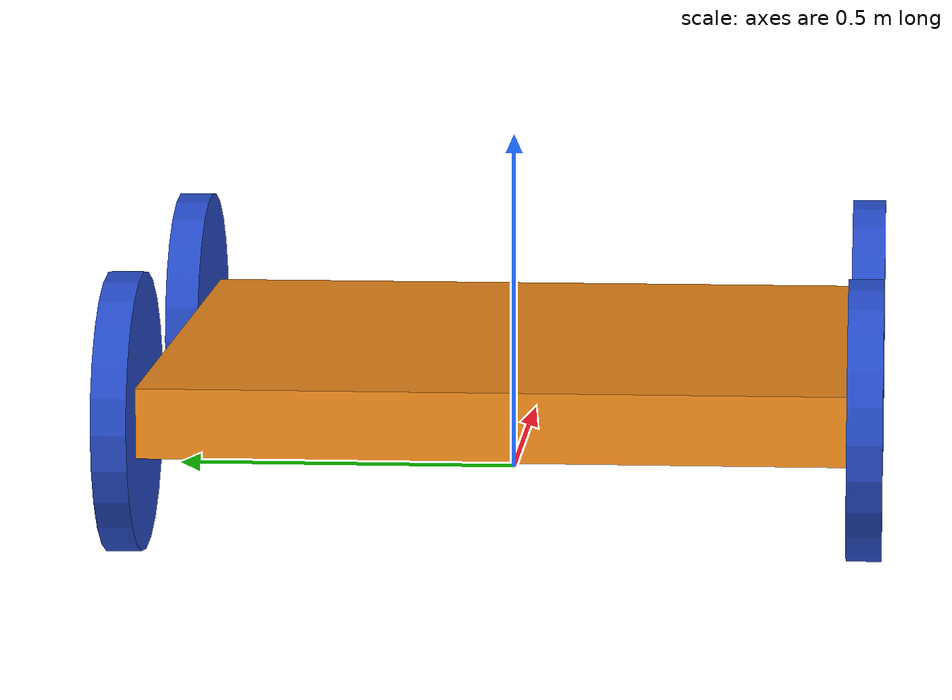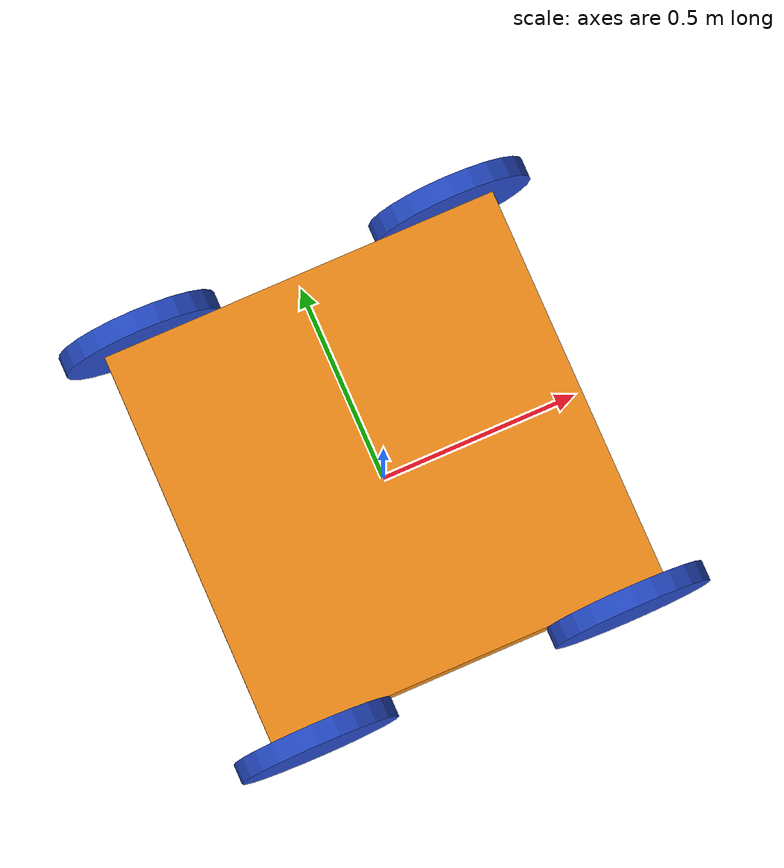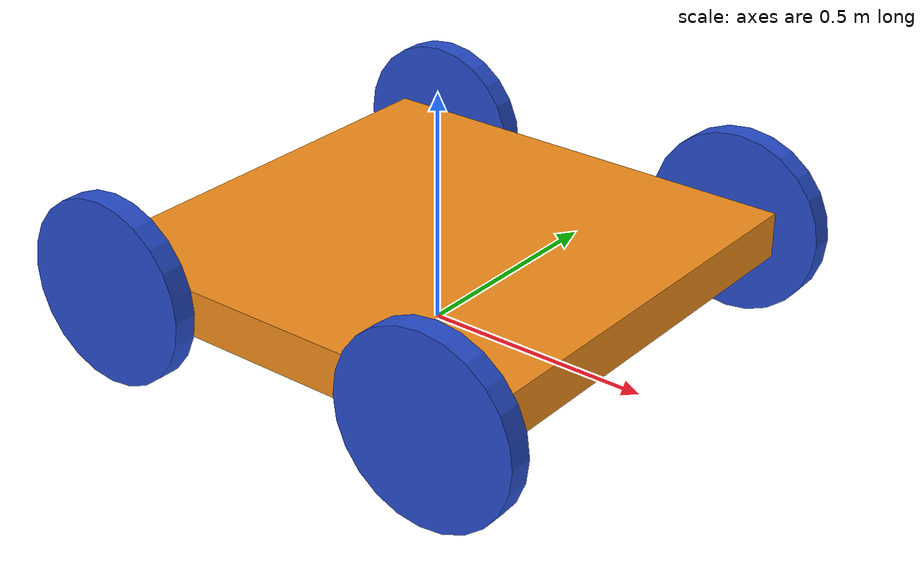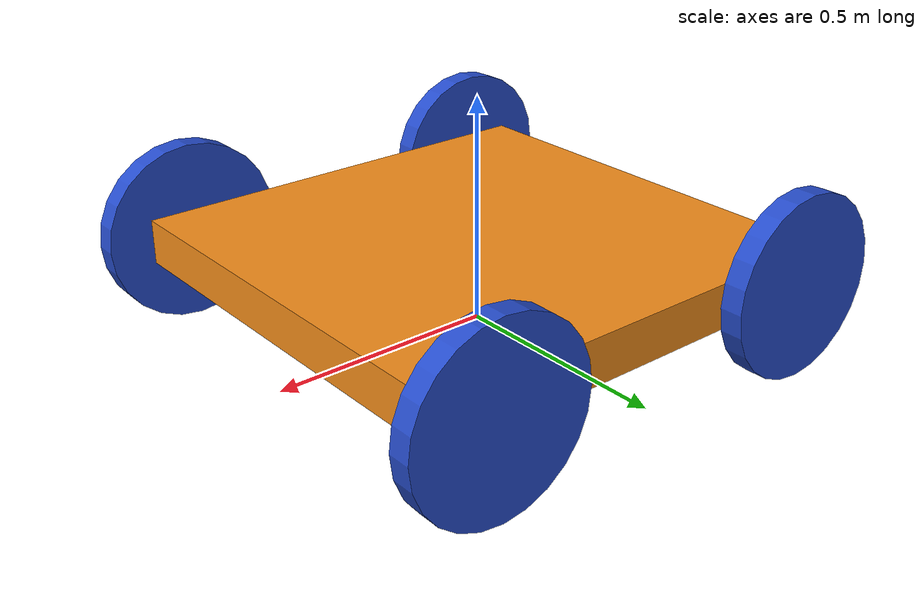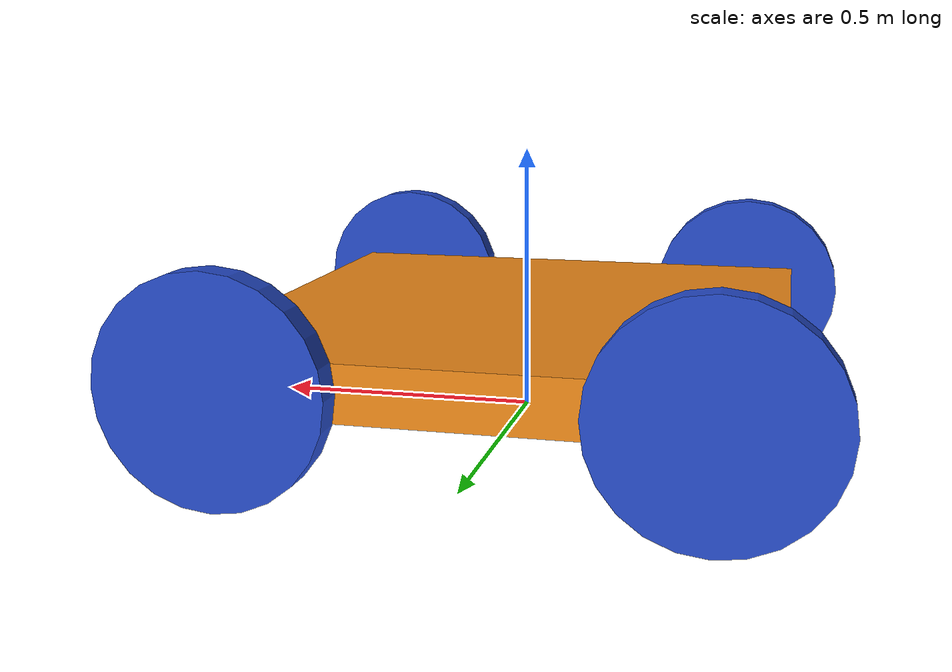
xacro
<?xml version='1.0'?>

<robot name="FOURWHEElBOT" xmlns:xacro="http://www.ros.org/wiki/xacro">

<xacro:include filename="$(find mybot_description)/urdf/mybot.gazebo" />

<!-- CHASSIS -->

  <link name="chassis">
    <pose>0 0 0.1 0 0 0</pose>
    <inertial>
      <mass value="15.0"/>
      <origin xyz="0 0 0.15" rpy=" 0 0 0"/>
      <inertia
          ixx="0.09" ixy="0" ixz="0"
          iyy="0.09" iyz="0"
          izz="0.09" />
    </inertial>
    <collision name='collision'>
     <geometry>
        <box size="1.0 1.0 .1"/>
      </geometry>
    </collision>
    <visual name='chassis_visual'>
      <origin xyz="0 0 0.15" rpy=" 0 0 0"/>
      <geometry>
        <box size="1.0 1.0 .1"/>
      </geometry>
    </visual>
  </link>

<!-- WHEEL LINKS -->

  <link name="left_wheel">
    <collision name="collision">
      <origin xyz="0 0 0" rpy="0 1.5707 1.5707"/>
      <geometry>
        <cylinder radius="0.2" length="0.05"/>
      </geometry>
    </collision>
    <visual name="left_wheel_visual">
      <origin xyz="0 0 0" rpy="0 1.5707 1.5707"/>
      <geometry>
        <cylinder radius="0.2" length="0.05"/>
      </geometry>
    </visual>
    <inertial>
      <origin xyz="0 0 0" rpy="0 1.5707 1.5707"/>
      <mass value="5"/>
      <cylinder_inertia m="5" r="0.2" h="0.05"/>
      <inertia
        ixx="0.051" ixy="0.0" ixz="0.0"
        iyy="0.051" iyz="0.0"
        izz="0.1"/>
    </inertial>
  </link>

  <link name="right_wheel">
    <collision name="collision">
      <origin xyz="0 0 0" rpy="0 1.5707 1.5707"/>
      <geometry>
        <cylinder radius="0.2" length="0.05"/>
      </geometry>
    </collision>
    <visual name="right_wheel_visual">
      <origin xyz="0 0 0" rpy="0 1.5707 1.5707"/>
      <geometry>
        <cylinder radius="0.2" length="0.05"/>
      </geometry>
    </visual>
    <inertial>
      <origin xyz="0 0 0" rpy="0 1.5707 1.5707"/>
      <mass value="5"/>
      <cylinder_inertia m="5" r="0.2" h="0.05"/>
      <inertia
        ixx="0.051" ixy="0.0" ixz="0.0"
        iyy="0.051" iyz="0.0"
        izz="0.1"/>
    </inertial>
  </link>

  <link name="left_back_wheel">
    <collision name="collision">
      <origin xyz="0 0 0" rpy="0 1.5707 1.5707"/>
      <geometry>
        <cylinder radius="0.2" length="0.05"/>
      </geometry>
    </collision>
    <visual name="left_wheel_back_visual">
      <origin xyz="0 0 0" rpy="0 1.5707 1.5707"/>
      <geometry>
        <cylinder radius="0.2" length="0.05"/>
      </geometry>
    </visual>
    <inertial>
      <origin xyz="0 0 0" rpy="0 1.5707 1.5707"/>
      <mass value="5"/>
      <cylinder_inertia m="5" r="0.2" h="0.05"/>
      <inertia
        ixx="0.051" ixy="0.0" ixz="0.0"
        iyy="0.051" iyz="0.0"
        izz="0.1"/>
    </inertial>
  </link>

  <link name="right_back_wheel">
    <collision name="collision">
      <origin xyz="0 0 0" rpy="0 1.5707 1.5707"/>
      <geometry>
        <cylinder radius="0.2" length="0.05"/>
      </geometry>
    </collision>
    <visual name="right_wheel_back_visual">
      <origin xyz="0 0 0" rpy="0 1.5707 1.5707"/>
      <geometry>
        <cylinder radius="0.2" length="0.05"/>
      </geometry>
    </visual>
    <inertial>
      <origin xyz="0 0 0" rpy="0 1.5707 1.5707"/>
      <mass value="5"/>
      <cylinder_inertia m="5" r="0.2" h="0.05"/>
      <inertia
        ixx="0.051" ixy="0.0" ixz="0.0"
        iyy="0.051" iyz="0.0"
        izz="0.1"/>
    </inertial>
  </link>

<!-- WHEEL JOINTS -->

  <joint type="continuous" name="left_wheel_hinge">
    <origin xyz="0.4 0.525 0.15" rpy="0 0 0"/>
    <child link="left_wheel"/>
    <parent link="chassis"/>
    <axis xyz="0 1 0" rpy="0 0 0"/>
  </joint>

  <joint type="continuous" name="right_wheel_hinge">
    <origin xyz="0.4 -0.525 0.15" rpy="0 0 0"/>
    <child link="right_wheel"/>
    <parent link="chassis"/>
    <axis xyz="0 1 0" rpy="0 0 0"/>
  </joint>

 <joint type="continuous" name="left_wheel_back_hinge">
    <origin xyz="-0.4 0.525 0.15" rpy="0 0 0"/>
    <child link="left_back_wheel"/>
    <parent link="chassis"/>
    <axis xyz="0 1 0" rpy="0 0 0"/>
  </joint>

  <joint type="continuous" name="right_wheel_back_hinge">
    <origin xyz="-0.4 -0.525 0.15" rpy="0 0 0"/>
    <child link="right_back_wheel"/>
    <parent link="chassis"/>
    <axis xyz="0 1 0" rpy="0 0 0"/>
  </joint>

</robot>
